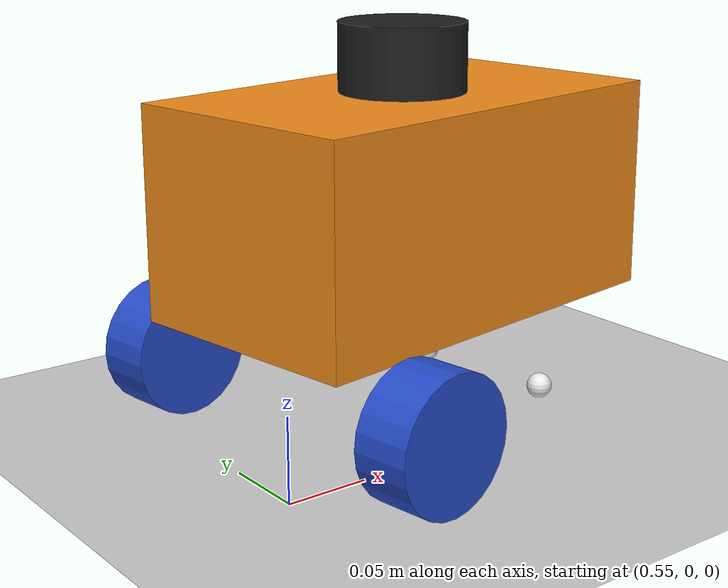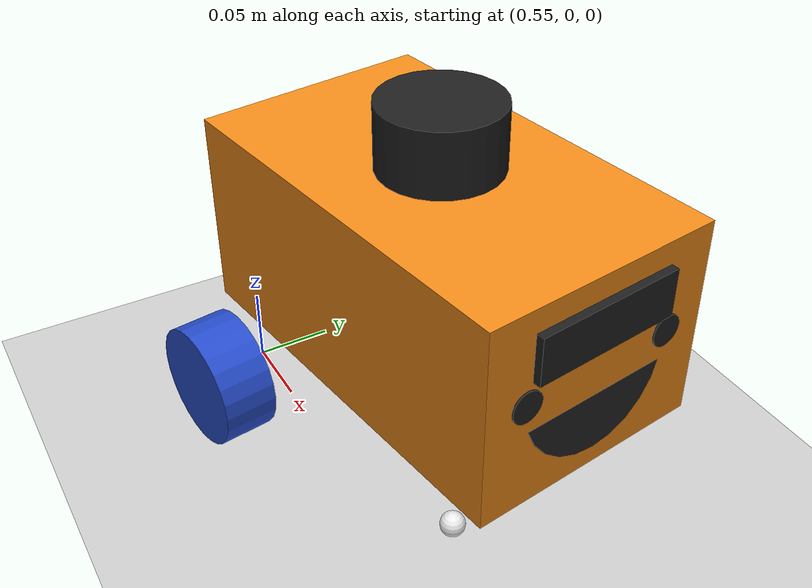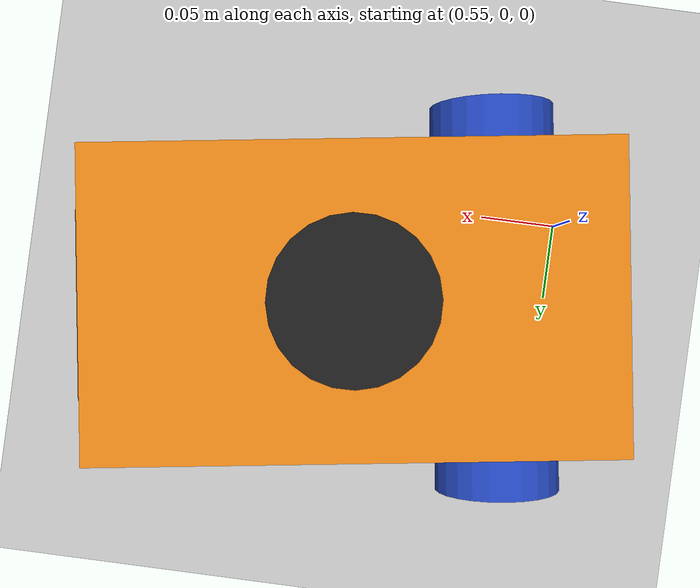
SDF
<sdf version="1.7">
 <world name="default">
  <light name="sun" type="directional">
   <pose>0 0 10 0 -0 0</pose>
   <diffuse>0.8 0.8 0.8 1</diffuse>
   <specular>0.2 0.2 0.2 1</specular>
   <attenuation>
    <range>1000</range>
    <constant>0.9</constant>
    <linear>0.01</linear>
    <quadratic>0.001</quadratic>
   </attenuation>
   <direction>-0.5 0.1 -0.9</direction>
   <spot><inner_angle>0</inner_angle><outer_angle>0</outer_angle><falloff>0</falloff></spot>
  </light>
  <model name="ground_plane">
   <static>1</static>
   <link name="link">
    <collision name="collision">
     <geometry><plane><normal>0 0 1</normal><size>100 100</size></plane></geometry>
     <surface><friction><ode><mu>100</mu><mu2>50</mu2></ode></friction></surface>
    </collision>
    <visual name="visual">
     <cast_shadows>0</cast_shadows>
     <geometry><plane><normal>0 0 1</normal><size>100 100</size></plane></geometry>
     <material>
      <script><uri>file://media/materials/scripts/gazebo.material</uri><name>Gazebo/Grey</name></script>
     </material>
    </visual>
   </link>
  </model>
  <gravity>0 0 -9.8</gravity>
  <magnetic_field>6e-06 2.3e-05 -4.2e-05</magnetic_field>
  <atmosphere type="adiabatic"/>
  <physics type="ode">
   <max_step_size>0.001</max_step_size>
   <real_time_factor>1</real_time_factor>
   <real_time_update_rate>1000</real_time_update_rate>
  </physics>
  <scene><ambient>0.4 0.4 0.4 1</ambient><background>0.7 0.7 0.7 1</background><shadows>1</shadows></scene>
  <audio><device>default</device></audio>
  <spherical_coordinates>
   <surface_model>EARTH_WGS84</surface_model>
   <latitude_deg>0</latitude_deg>
   <longitude_deg>0</longitude_deg>
   <elevation>0</elevation>
   <heading_deg>0</heading_deg>
  </spherical_coordinates>
  <model name="my_bot">
   <link name="base_link">
    <inertial>
     <pose>0.093452 0 0.073513 0 -0 0</pose>
     <mass>0.62</mass>
     <inertia>
      <ixx>0.00275204</ixx>
      <ixy>0</ixy>
      <ixz>0.000208412</ixz>
      <iyy>0.00468879</iyy>
      <iyz>-6.77626e-21</iyz>
      <izz>0.00407987</izz>
     </inertia>
    </inertial>
    <collision name="base_link_fixed_joint_lump__chassis_collision">
     <pose>0.091 0 0.064 0 -0 0</pose>
     <geometry><box><size>0.262 0.154 0.128</size></box></geometry>
    </collision>
    <collision name="base_link_fixed_joint_lump__laser_frame_collision_1">
     <pose>0.091 0 0.1485 0 -0 0</pose>
     <geometry><cylinder><length>0.041</length><radius>0.038</radius></cylinder></geometry>
    </collision>
    <collision name="base_link_fixed_joint_lump__left_caster_wheel_collision_2">
     <pose>0.167 0.0485 -0.0636 0 -0 0</pose>
     <geometry><sphere><radius>0.0079</radius></sphere></geometry>
     <surface><friction><ode><mu>0.001</mu><mu2>0.001</mu2></ode></friction></surface>
    </collision>
    <collision name="base_link_fixed_joint_lump__right_caster_wheel_collision_3">
     <pose>0.167 -0.0485 -0.0636 0 -0 0</pose>
     <geometry><sphere><radius>0.0079</radius></sphere></geometry>
     <surface><friction><ode><mu>0.001</mu><mu2>0.001</mu2></ode></friction></surface>
    </collision>
    <visual name="base_link_fixed_joint_lump__chassis_visual">
     <pose>0.091 0 0.064 0 -0 0</pose>
     <geometry><box><size>0.262 0.154 0.128</size></box></geometry>
     <material>
      <script><name>Gazebo/Orange</name><uri>file://media/materials/scripts/gazebo.material</uri></script>
     </material>
    </visual>
    <visual name="base_link_fixed_joint_lump__camera_link_visual_1">
     <pose>0.222 0 0.098 0 -0 0</pose>
     <geometry><box><size>0.01 0.094 0.03</size></box></geometry>
     <material>
      <script><name>Gazebo/Black</name><uri>file://media/materials/scripts/gazebo.material</uri></script>
     </material>
    </visual>
    <visual name="base_link_fixed_joint_lump__face_link_visual_2">
     <pose>0.222 0.05 0.069 3.14159 1.57079 3.14159</pose>
     <geometry><cylinder><length>0.002</length><radius>0.01</radius></cylinder></geometry>
     <material>
      <script><name>Gazebo/Black</name><uri>file://media/materials/scripts/gazebo.material</uri></script>
     </material>
    </visual>
    <visual name="base_link_fixed_joint_lump__face_link_visual_3">
     <pose>0.222 -0.05 0.069 3.14159 1.57079 3.14159</pose>
     <geometry><cylinder><length>0.002</length><radius>0.01</radius></cylinder></geometry>
     <material>
      <script><name>Gazebo/Black</name><uri>file://media/materials/scripts/gazebo.material</uri></script>
     </material>
    </visual>
    <visual name="base_link_fixed_joint_lump__face_link_visual_4">
     <pose>0.211 0 0.064 0 1.5 0</pose>
     <geometry><cylinder><length>0.02</length><radius>0.05</radius></cylinder></geometry>
     <material>
      <script><name>Gazebo/Black</name><uri>file://media/materials/scripts/gazebo.material</uri></script>
     </material>
    </visual>
    <visual name="base_link_fixed_joint_lump__laser_frame_visual_5">
     <pose>0.091 0 0.1485 0 -0 0</pose>
     <geometry><cylinder><length>0.041</length><radius>0.038</radius></cylinder></geometry>
     <material>
      <script><name>Gazebo/Black</name><uri>file://media/materials/scripts/gazebo.material</uri></script>
     </material>
    </visual>
    <visual name="base_link_fixed_joint_lump__left_caster_wheel_visual_6">
     <pose>0.167 0.0485 -0.0636 0 -0 0</pose>
     <geometry><sphere><radius>0.0079</radius></sphere></geometry>
     <material>
      <script><name>Gazebo/White</name><uri>file://media/materials/scripts/gazebo.material</uri></script>
     </material>
    </visual>
    <visual name="base_link_fixed_joint_lump__right_caster_wheel_visual_7">
     <pose>0.167 -0.0485 -0.0636 0 -0 0</pose>
     <geometry><sphere><radius>0.0079</radius></sphere></geometry>
     <material>
      <script><name>Gazebo/White</name><uri>file://media/materials/scripts/gazebo.material</uri></script>
     </material>
    </visual>
    <sensor name="camera" type="camera">
     <visualize>1</visualize>
     <update_rate>10</update_rate>
     <camera>
      <horizontal_fov>1.089</horizontal_fov>
      <image><format>R8G8B8</format><width>640</width><height>480</height></image>
      <clip><near>0.05</near><far>8</far></clip>
     </camera>
     <plugin name="camera_controller" filename="libgazebo_ros_camera.so">
      <frame_name>camera_link_optical</frame_name>
     </plugin>
     <pose>0.222 0 0.098 0 -0 0</pose>
    </sensor>
    <sensor name="laser" type="ray">
     <visualize>0</visualize>
     <update_rate>10</update_rate>
     <ray>
      <scan>
       <horizontal>
        <samples>360</samples>
        <min_angle>-3.14</min_angle>
        <max_angle>3.14</max_angle>
        <resolution>1</resolution>
       </horizontal>
       <vertical><samples>1</samples><min_angle>0</min_angle><max_angle>0</max_angle></vertical>
      </scan>
      <range><min>0.3</min><max>12</max></range>
     </ray>
     <plugin name="laser_controller" filename="libgazebo_ros_ray_sensor.so">
      <ros><argument>~/out:=scan</argument></ros>
      <output_type>sensor_msgs/LaserScan</output_type>
      <frame_name>laser_frame</frame_name>
     </plugin>
     <pose>0.091 0 0.1485 0 -0 0</pose>
    </sensor>
   </link>
   <joint name="left_wheel_joint" type="revolute">
    <pose relative_to="base_link">0 0.107 -0.0315 -1.5708 0 0</pose>
    <parent>base_link</parent>
    <child>left_wheel</child>
    <axis>
     <xyz>0 0 1</xyz>
     <limit><lower>-1e+16</lower><upper>1e+16</upper></limit>
     <dynamics><spring_reference>0</spring_reference><spring_stiffness>0</spring_stiffness></dynamics>
    </axis>
   </joint>
   <link name="left_wheel">
    <pose relative_to="left_wheel_joint">0 0 0 0 -0 0</pose>
    <inertial>
     <mass>0.05</mass>
     <inertia>
      <ixx>2.51042e-05</ixx>
      <ixy>0</ixy>
      <ixz>0</ixz>
      <iyy>2.51042e-05</iyy>
      <iyz>0</iyz>
      <izz>4e-05</izz>
     </inertia>
    </inertial>
    <collision name="left_wheel_collision"><geometry><sphere><radius>0.04</radius></sphere></geometry></collision>
    <visual name="left_wheel_visual">
     <geometry><cylinder><length>0.035</length><radius>0.04</radius></cylinder></geometry>
     <material>
      <script><name>Gazebo/Blue</name><uri>file://media/materials/scripts/gazebo.material</uri></script>
     </material>
    </visual>
   </link>
   <joint name="right_wheel_joint" type="revolute">
    <pose relative_to="base_link">0 -0.107 -0.0315 1.5708 -0 0</pose>
    <parent>base_link</parent>
    <child>right_wheel</child>
    <axis>
     <xyz>0 0 -1</xyz>
     <limit><lower>-1e+16</lower><upper>1e+16</upper></limit>
     <dynamics><spring_reference>0</spring_reference><spring_stiffness>0</spring_stiffness></dynamics>
    </axis>
   </joint>
   <link name="right_wheel">
    <pose relative_to="right_wheel_joint">0 0 0 0 -0 0</pose>
    <inertial>
     <mass>0.05</mass>
     <inertia>
      <ixx>2.51042e-05</ixx>
      <ixy>0</ixy>
      <ixz>0</ixz>
      <iyy>2.51042e-05</iyy>
      <iyz>0</iyz>
      <izz>4e-05</izz>
     </inertia>
    </inertial>
    <collision name="right_wheel_collision">
     <geometry><sphere><radius>0.04</radius></sphere></geometry>
    </collision>
    <visual name="right_wheel_visual">
     <geometry><cylinder><length>0.035</length><radius>0.04</radius></cylinder></geometry>
     <material>
      <script><name>Gazebo/Blue</name><uri>file://media/materials/scripts/gazebo.material</uri></script>
     </material>
    </visual>
   </link>
   <static>0</static>
   <plugin name="gazebo_ros2_control" filename="libgazebo_ros2_control.so">
    <parameters>/home/wld/dev_ws/install/kommanbot_one/share/kommanbot_one/config/my_controllers.yaml</parameters>
    <parameters>/home/wld/dev_ws/install/kommanbot_one/share/kommanbot_one/config/gaz_ros2_ctl_use_sim.yaml</parameters>
   </plugin>
   <pose>0.590669 0.055611 0.071498 -2e-05 -9e-06 0.146844</pose>
  </model>
 </world>
</sdf>
